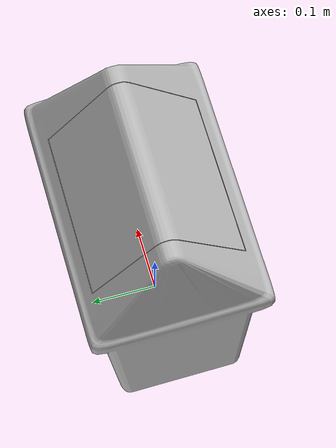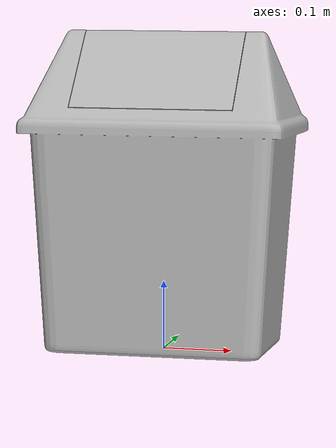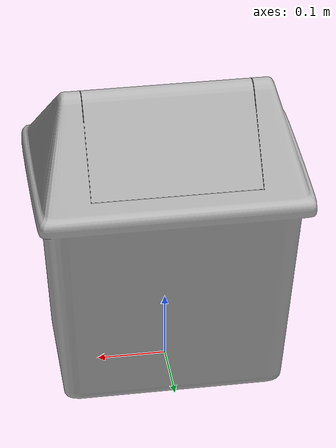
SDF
<?xml version="1.0" ?>
<sdf version="1.5">
  <model name="trashcan">
    <link name="link">
      <pose>0 0 0 0 0 0</pose>
      <collision name="collision">
        <geometry>
          <mesh>
            <uri>model://trashcan/meshes/model.dae</uri>
          </mesh>
        </geometry>
      </collision>
      <visual name="visual">
        <geometry>
          <mesh>
            <uri>model://trashcan/meshes/model.dae</uri>
          </mesh>
        </geometry>
      </visual>
    </link>
    <static>1</static>
  </model>
</sdf>
